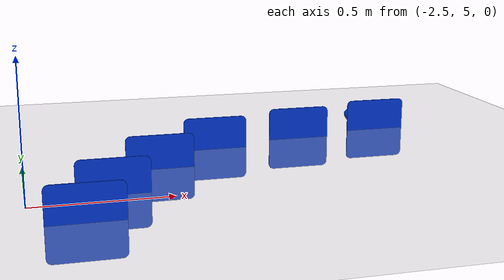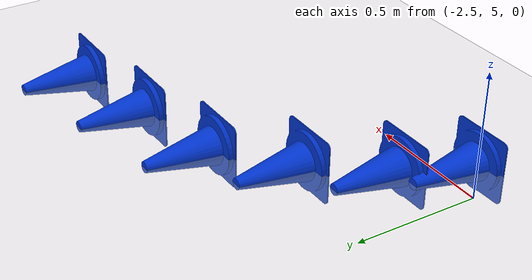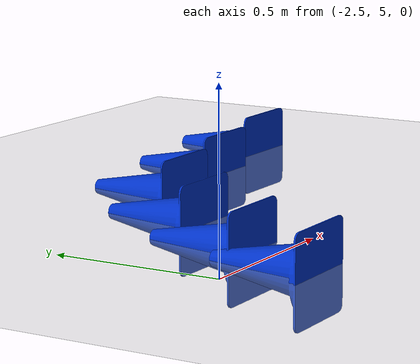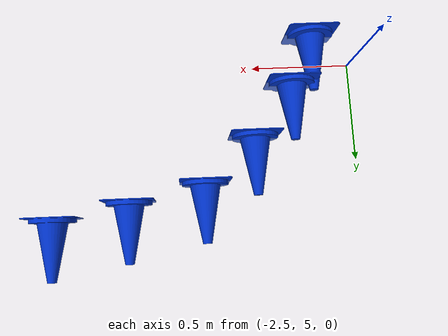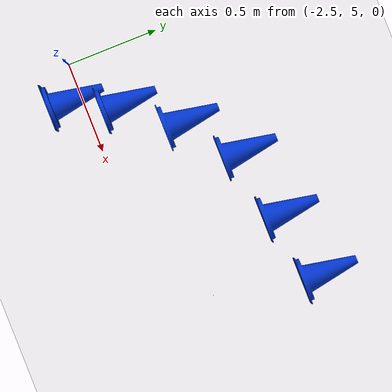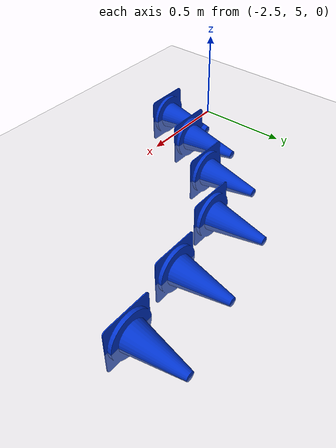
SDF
<sdf version="1.7">
 <world name="default">
  <model name="ground_plane">
   <static>1</static>
   <link name="link">
    <collision name="collision">
     <geometry><plane><normal>0 0 1</normal><size>100 100</size></plane></geometry>
     <surface><friction><ode><mu>100</mu><mu2>50</mu2></ode></friction></surface>
    </collision>
    <visual name="visual">
     <cast_shadows>0</cast_shadows>
     <geometry><plane><normal>0 0 1</normal><size>100 100</size></plane></geometry>
     <material>
      <script><uri>file://media/materials/scripts/gazebo.material</uri><name>Gazebo/Grey</name></script>
     </material>
    </visual>
   </link>
  </model>
  <model name="cone_blue_31">
   <static>1</static>
   <link name="link">
    <visual name="visual">
     <geometry><mesh><uri>model://cone_blue/meshes/cone.stl</uri><scale>0.001 0.001 0.001</scale></mesh></geometry>
     <material><ambient>0 0.2 0.8 1</ambient><diffuse>0 0.2 0.8 1</diffuse></material>
    </visual>
    <collision name="collision">
     <geometry><mesh><uri>model://cone_blue/meshes/cone.stl</uri><scale>0.001 0.001 0.001</scale></mesh></geometry>
    </collision>
    <inertial>
     <mass>0.1</mass>
     <inertia><ixx>0.0001</ixx><iyy>0.0001</iyy><izz>0.0001</izz><ixy>0</ixy><ixz>0</ixz><iyz>0</iyz></inertia>
    </inertial>
   </link>
   <pose>-2.31959 4.8354 0 0 -0 0</pose>
  </model>
  <model name="cone_blue_32">
   <static>1</static>
   <link name="link">
    <visual name="visual">
     <geometry><mesh><uri>model://cone_blue/meshes/cone.stl</uri><scale>0.001 0.001 0.001</scale></mesh></geometry>
     <material><ambient>0 0.2 0.8 1</ambient><diffuse>0 0.2 0.8 1</diffuse></material>
    </visual>
    <collision name="collision">
     <geometry><mesh><uri>model://cone_blue/meshes/cone.stl</uri><scale>0.001 0.001 0.001</scale></mesh></geometry>
    </collision>
    <inertial>
     <mass>0.1</mass>
     <inertia><ixx>0.0001</ixx><iyy>0.0001</iyy><izz>0.0001</izz><ixy>0</ixy><ixz>0</ixz><iyz>0</iyz></inertia>
    </inertial>
   </link>
   <pose>-2.20266 5.09677 0 0 -0 0</pose>
  </model>
  <model name="cone_yellow_23">
   <static>1</static>
   <link name="link">
    <visual name="visual">
     <geometry>
      <mesh><uri>model://cone_yellow/meshes/cone.stl</uri><scale>0.001 0.001 0.001</scale></mesh>
     </geometry>
     <material><ambient>1 0.82 0 1</ambient><diffuse>1 0.82 0 1</diffuse></material>
    </visual>
    <collision name="collision">
     <geometry>
      <mesh><uri>model://cone_yellow/meshes/cone.stl</uri><scale>0.001 0.001 0.001</scale></mesh>
     </geometry>
    </collision>
    <inertial>
     <mass>0.1</mass>
     <inertia><ixx>0.0001</ixx><iyy>0.0001</iyy><izz>0.0001</izz><ixy>0</ixy><ixz>0</ixz><iyz>0</iyz></inertia>
    </inertial>
   </link>
   <pose>-1.58244 5.00576 0 0 -0 0</pose>
  </model>
  <model name="cone_yellow_24">
   <static>1</static>
   <link name="link">
    <visual name="visual">
     <geometry>
      <mesh><uri>model://cone_yellow/meshes/cone.stl</uri><scale>0.001 0.001 0.001</scale></mesh>
     </geometry>
     <material><ambient>1 0.82 0 1</ambient><diffuse>1 0.82 0 1</diffuse></material>
    </visual>
    <collision name="collision">
     <geometry>
      <mesh><uri>model://cone_yellow/meshes/cone.stl</uri><scale>0.001 0.001 0.001</scale></mesh>
     </geometry>
    </collision>
    <inertial>
     <mass>0.1</mass>
     <inertia><ixx>0.0001</ixx><iyy>0.0001</iyy><izz>0.0001</izz><ixy>0</ixy><ixz>0</ixz><iyz>0</iyz></inertia>
    </inertial>
   </link>
   <pose>-1.31341 5.18976 0 0 -0 0</pose>
  </model>
  <model name="cone_yellow_25">
   <static>1</static>
   <link name="link">
    <visual name="visual">
     <geometry>
      <mesh><uri>model://cone_yellow/meshes/cone.stl</uri><scale>0.001 0.001 0.001</scale></mesh>
     </geometry>
     <material><ambient>1 0.82 0 1</ambient><diffuse>1 0.82 0 1</diffuse></material>
    </visual>
    <collision name="collision">
     <geometry>
      <mesh><uri>model://cone_yellow/meshes/cone.stl</uri><scale>0.001 0.001 0.001</scale></mesh>
     </geometry>
    </collision>
    <inertial>
     <mass>0.1</mass>
     <inertia><ixx>0.0001</ixx><iyy>0.0001</iyy><izz>0.0001</izz><ixy>0</ixy><ixz>0</ixz><iyz>0</iyz></inertia>
    </inertial>
   </link>
   <pose>-1.06138 5.26724 0 0 -0 0</pose>
  </model>
  <model name="cone_blue_33">
   <static>1</static>
   <link name="link">
    <visual name="visual">
     <geometry><mesh><uri>model://cone_blue/meshes/cone.stl</uri><scale>0.001 0.001 0.001</scale></mesh></geometry>
     <material><ambient>0 0.2 0.8 1</ambient><diffuse>0 0.2 0.8 1</diffuse></material>
    </visual>
    <collision name="collision">
     <geometry><mesh><uri>model://cone_blue/meshes/cone.stl</uri><scale>0.001 0.001 0.001</scale></mesh></geometry>
    </collision>
    <inertial>
     <mass>0.1</mass>
     <inertia><ixx>0.0001</ixx><iyy>0.0001</iyy><izz>0.0001</izz><ixy>0</ixy><ixz>0</ixz><iyz>0</iyz></inertia>
    </inertial>
   </link>
   <pose>-1.99337 5.37463 0 0 -0 0</pose>
  </model>
  <model name="cone_blue_34">
   <static>1</static>
   <link name="link">
    <visual name="visual">
     <geometry><mesh><uri>model://cone_blue/meshes/cone.stl</uri><scale>0.001 0.001 0.001</scale></mesh></geometry>
     <material><ambient>0 0.2 0.8 1</ambient><diffuse>0 0.2 0.8 1</diffuse></material>
    </visual>
    <collision name="collision">
     <geometry><mesh><uri>model://cone_blue/meshes/cone.stl</uri><scale>0.001 0.001 0.001</scale></mesh></geometry>
    </collision>
    <inertial>
     <mass>0.1</mass>
     <inertia><ixx>0.0001</ixx><iyy>0.0001</iyy><izz>0.0001</izz><ixy>0</ixy><ixz>0</ixz><iyz>0</iyz></inertia>
    </inertial>
   </link>
   <pose>-1.72686 5.60507 0 0 -0 0</pose>
  </model>
  <model name="cone_blue_35">
   <static>1</static>
   <link name="link">
    <visual name="visual">
     <geometry><mesh><uri>model://cone_blue/meshes/cone.stl</uri><scale>0.001 0.001 0.001</scale></mesh></geometry>
     <material><ambient>0 0.2 0.8 1</ambient><diffuse>0 0.2 0.8 1</diffuse></material>
    </visual>
    <collision name="collision">
     <geometry><mesh><uri>model://cone_blue/meshes/cone.stl</uri><scale>0.001 0.001 0.001</scale></mesh></geometry>
    </collision>
    <inertial>
     <mass>0.1</mass>
     <inertia><ixx>0.0001</ixx><iyy>0.0001</iyy><izz>0.0001</izz><ixy>0</ixy><ixz>0</ixz><iyz>0</iyz></inertia>
    </inertial>
   </link>
   <pose>-1.34085 5.69184 0 0 -0 0</pose>
  </model>
  <model name="cone_blue_36">
   <static>1</static>
   <link name="link">
    <visual name="visual">
     <geometry><mesh><uri>model://cone_blue/meshes/cone.stl</uri><scale>0.001 0.001 0.001</scale></mesh></geometry>
     <material><ambient>0 0.2 0.8 1</ambient><diffuse>0 0.2 0.8 1</diffuse></material>
    </visual>
    <collision name="collision">
     <geometry><mesh><uri>model://cone_blue/meshes/cone.stl</uri><scale>0.001 0.001 0.001</scale></mesh></geometry>
    </collision>
    <inertial>
     <mass>0.1</mass>
     <inertia><ixx>0.0001</ixx><iyy>0.0001</iyy><izz>0.0001</izz><ixy>0</ixy><ixz>0</ixz><iyz>0</iyz></inertia>
    </inertial>
   </link>
   <pose>-0.959184 5.76461 0 0 -0 0</pose>
  </model>
  <model name="cone_yellow_26">
   <static>1</static>
   <link name="link">
    <visual name="visual">
     <geometry>
      <mesh><uri>model://cone_yellow/meshes/cone.stl</uri><scale>0.001 0.001 0.001</scale></mesh>
     </geometry>
     <material><ambient>1 0.82 0 1</ambient><diffuse>1 0.82 0 1</diffuse></material>
    </visual>
    <collision name="collision">
     <geometry>
      <mesh><uri>model://cone_yellow/meshes/cone.stl</uri><scale>0.001 0.001 0.001</scale></mesh>
     </geometry>
    </collision>
    <inertial>
     <mass>0.1</mass>
     <inertia><ixx>0.0001</ixx><iyy>0.0001</iyy><izz>0.0001</izz><ixy>0</ixy><ixz>0</ixz><iyz>0</iyz></inertia>
    </inertial>
   </link>
   <pose>-0.791035 5.31732 0 0 -0 0</pose>
  </model>
 </world>
</sdf>
